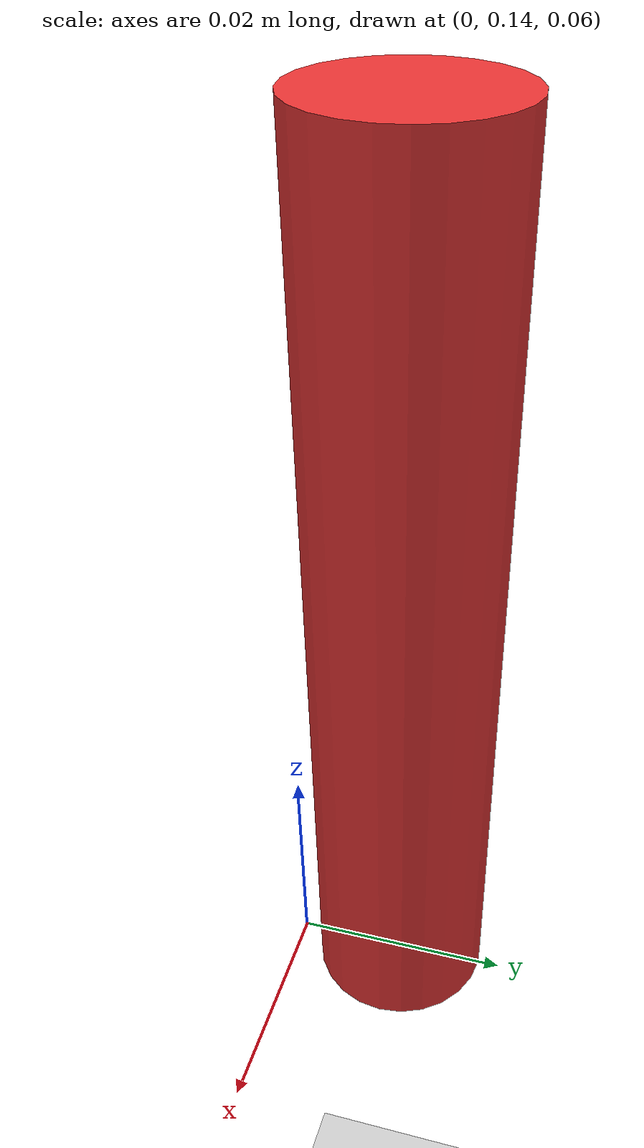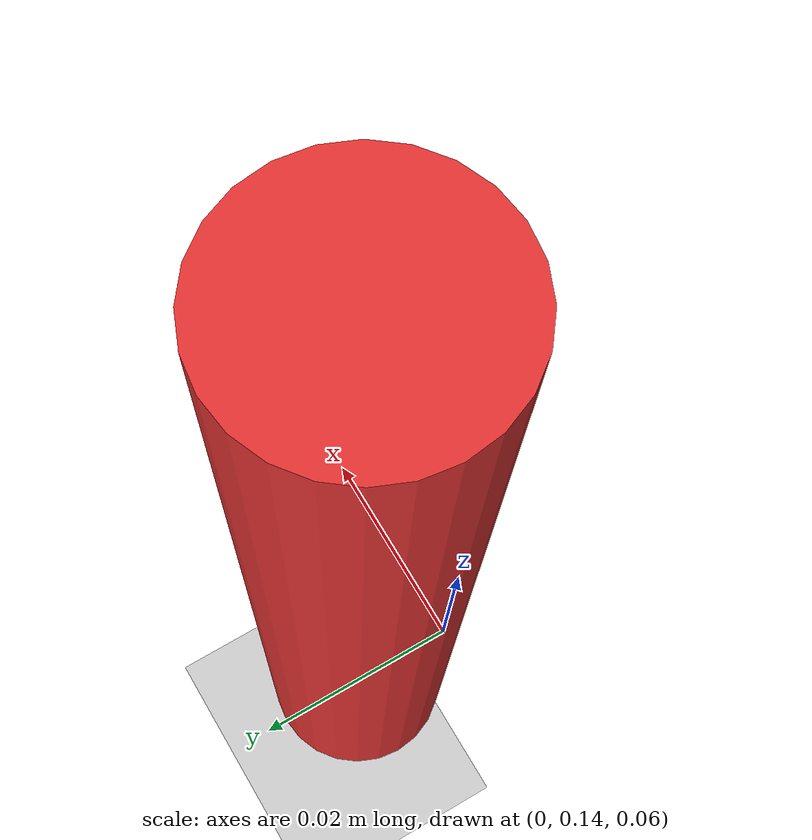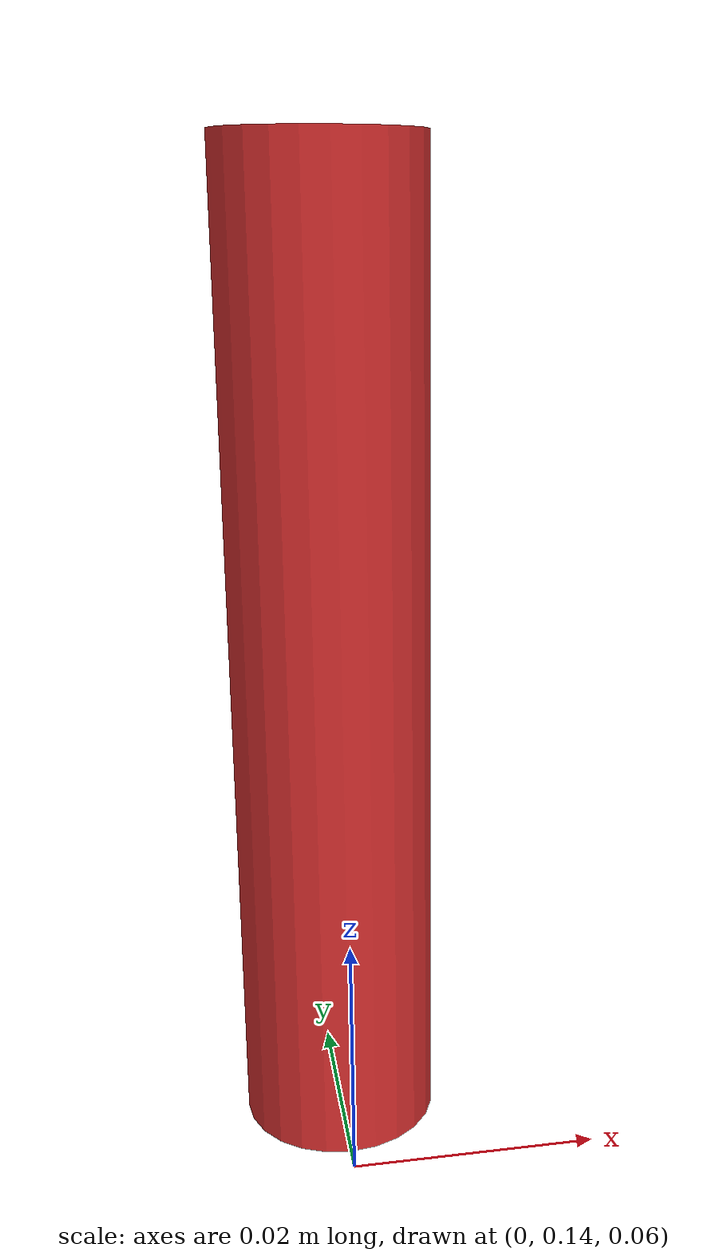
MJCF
<mujoco model="grasp_scene">
  <asset>
      <texture name="grid" type="2d" builtin="checker" rgb1=".1 .2 .3"
          rgb2=".2 .3 .4" width="300" height="300"/>
      <material name="grid" texture="grid" texrepeat="8 8" reflectance="0"/>
  </asset>
  <worldbody>
    <light pos="0 0 1.5" dir="0 0 -1" diffuse="1 1 1"/>
    <geom name="floor" type="plane" material="grid" size="1 1 0.1" rgba="0.8 0.8 0.8 1"/>

    <body name="cylinder" pos="0 0.15 0.1">
      <freejoint/>
      <geom type="cylinder" size="0.008 0.04" rgba="0.9 0.2 0.2 1"
            friction="1.0 0.005 0.0001" density="500"/>
    </body>
  </worldbody>
</mujoco>
